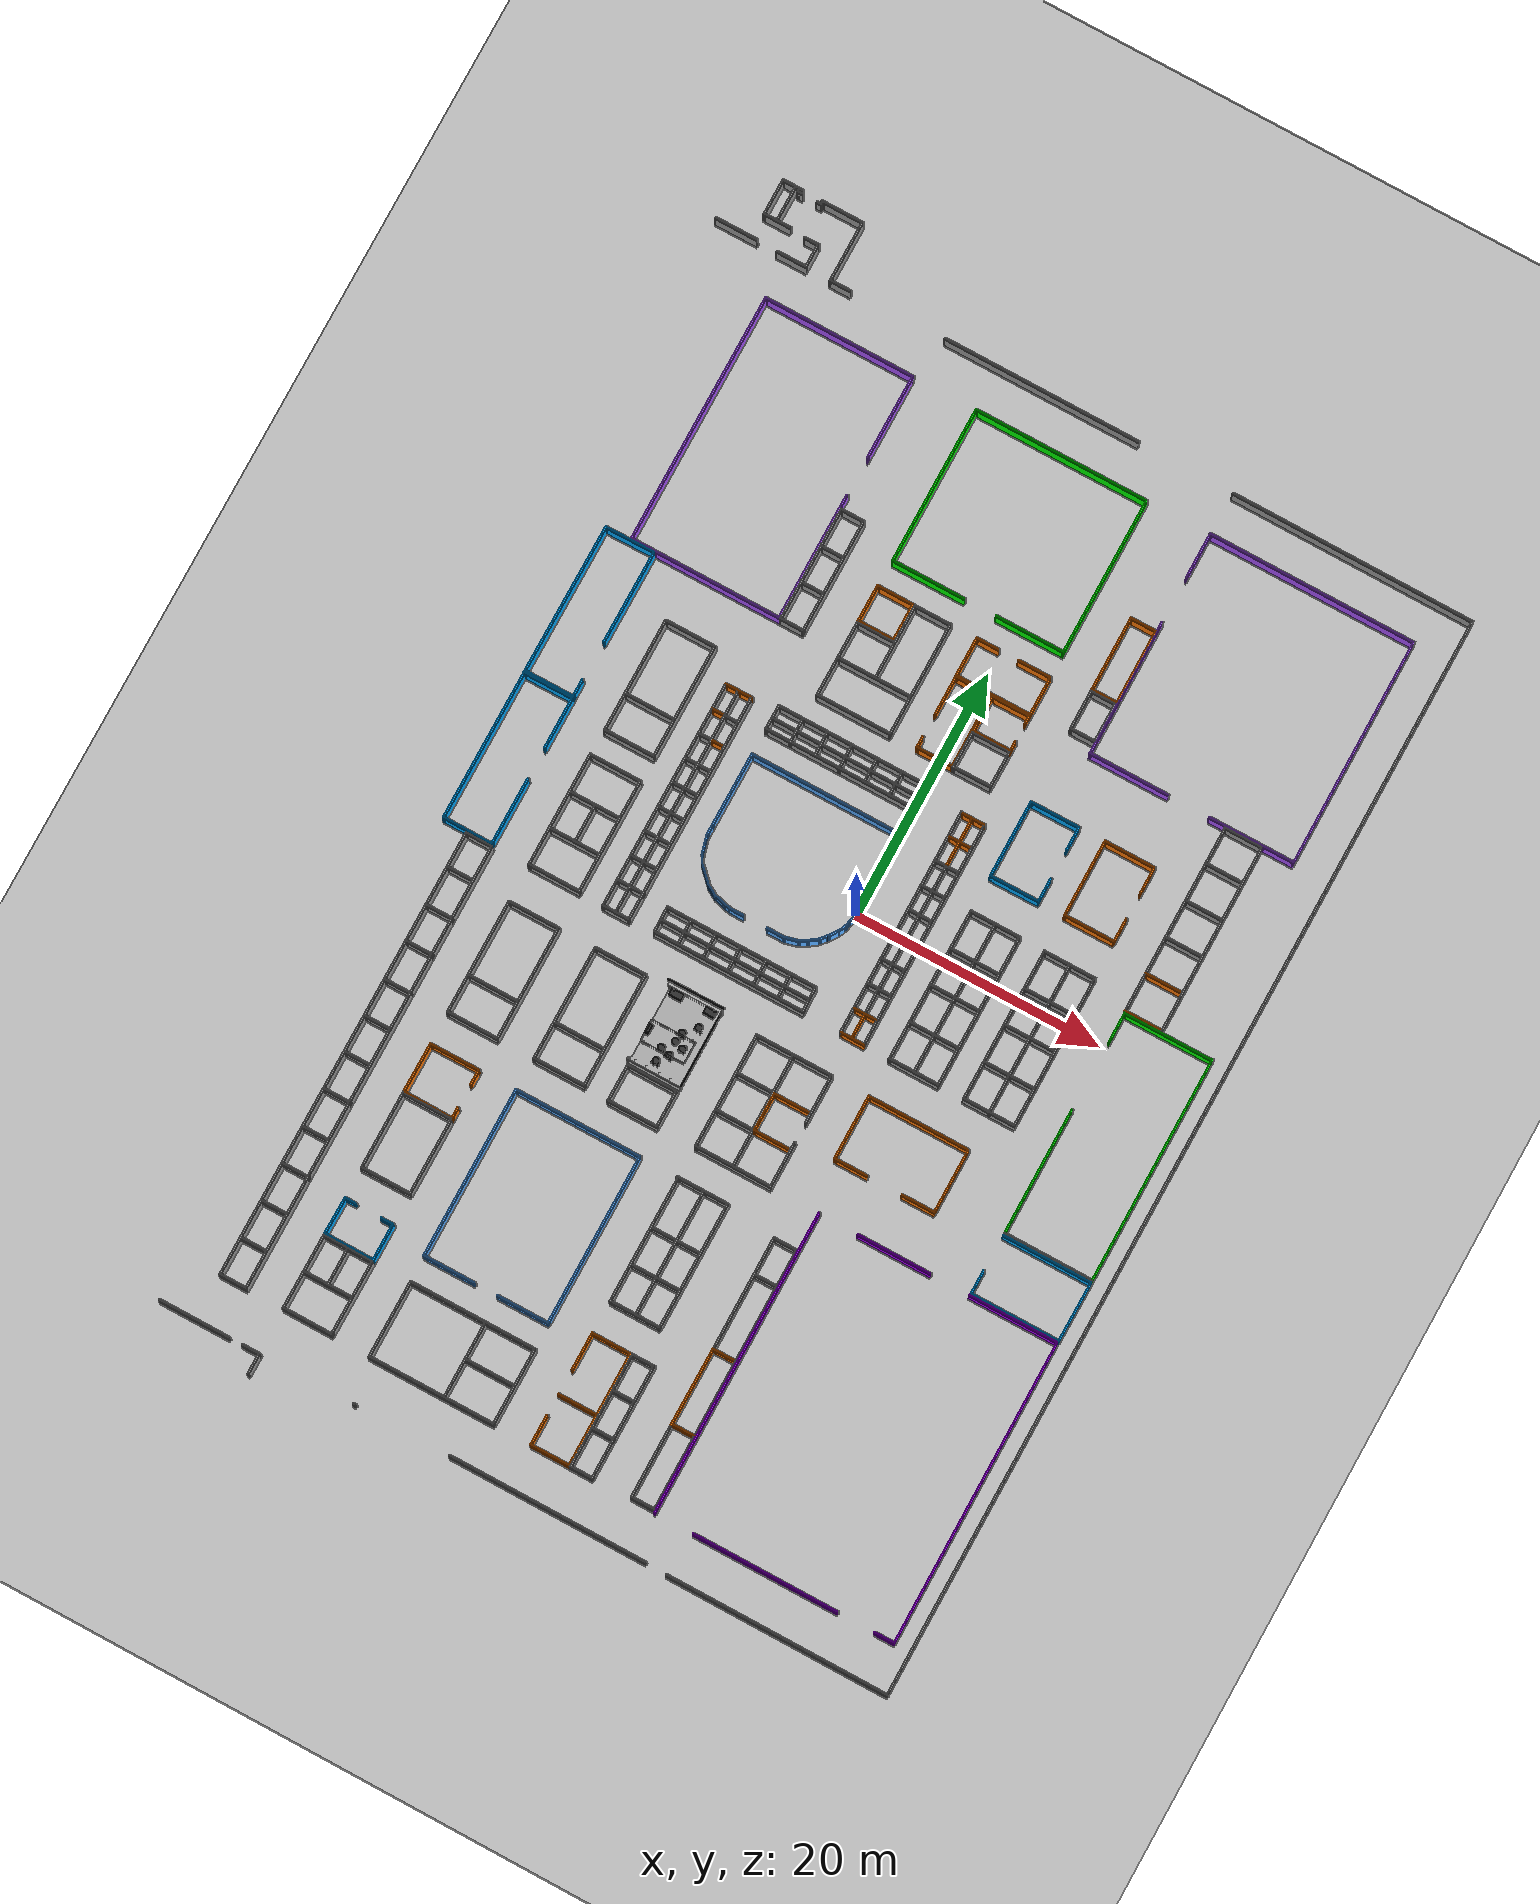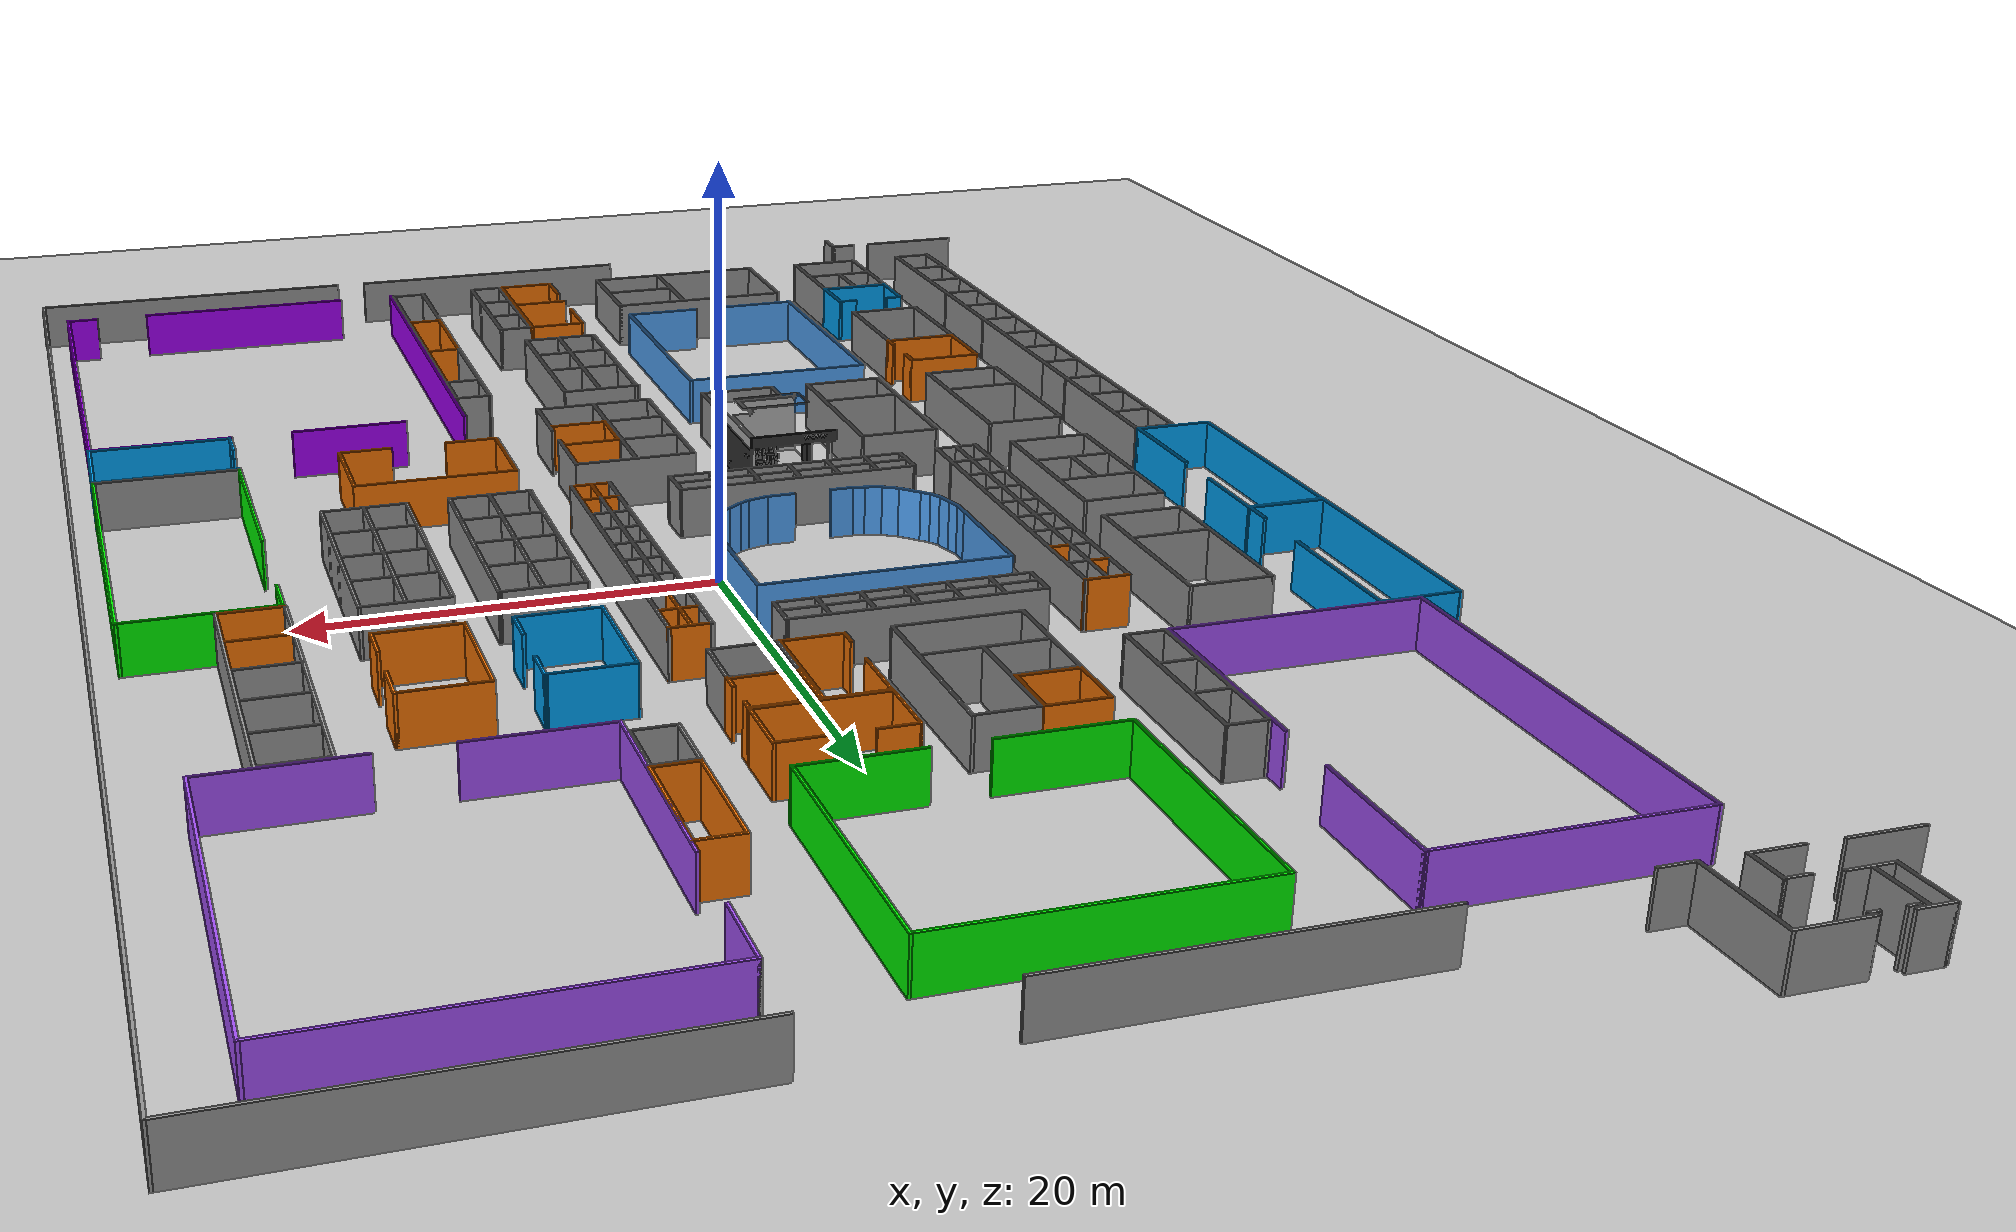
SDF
<sdf version="1.6">
 <world name="default">
  <light name="sun" type="directional">
   <cast_shadows>0</cast_shadows>
   <pose>0 0 10 0 -0 0</pose>
   <diffuse>0.8 0.8 0.8 1</diffuse>
   <specular>0.2 0.2 0.2 1</specular>
   <attenuation>
    <range>1000</range>
    <constant>0.9</constant>
    <linear>0.01</linear>
    <quadratic>0.001</quadratic>
   </attenuation>
   <direction>-0.5 0.1 -0.9</direction>
  </light>
  <model name="ground_plane">
   <static>1</static>
   <link name="link">
    <collision name="collision">
     <geometry><plane><normal>0 0 1</normal><size>100 100</size></plane></geometry>
     <surface><friction><ode><mu>100</mu><mu2>50</mu2></ode></friction></surface>
    </collision>
    <visual name="visual">
     <cast_shadows>0</cast_shadows>
     <geometry><plane><normal>0 0 1</normal><size>100 100</size></plane></geometry>
     <material>
      <script><uri>file://media/materials/scripts/gazebo.material</uri><name>Gazebo/Grey</name></script>
     </material>
    </visual>
   </link>
  </model>
  <gravity>0 0 -9.8</gravity>
  <magnetic_field>6e-06 2.3e-05 -4.2e-05</magnetic_field>
  <atmosphere type="adiabatic"/>
  <physics name="default_physics" default="0" type="ode">
   <max_step_size>0.001</max_step_size>
   <real_time_factor>1.0</real_time_factor>
   <real_time_update_rate>1000</real_time_update_rate>
  </physics>
  <scene><shadows>0</shadows></scene>
  <spherical_coordinates>
   <surface_model>EARTH_WGS84</surface_model>
   <latitude_deg>0</latitude_deg>
   <longitude_deg>0</longitude_deg>
   <elevation>0</elevation>
   <heading_deg>0</heading_deg>
  </spherical_coordinates>
  <include><uri>model://cr2_gazebo/models/lond_fintech2018/base</uri><name>fintech</name></include>
  <include>
   <uri>model://cr2_gazebo/models/lond_fintech2018/base_neighbour_box</uri>
   <name>neighbour_walls</name>
  </include>
  <include>
   <uri>model://cr2_gazebo/models/lond_fintech2018/construction</uri>
   <name>construction</name>
   <pose>-6.97021 -13.9566 1.45090 0 0 -3.141592</pose>
  </include>
  <include>
   <uri>model://cr2_gazebo/models/lond_fintech2018/chair</uri>
   <name>chair</name>
   <pose>-6.20099 -14.6145 0.845384 0 -1.1e-05 -0.109586</pose>
  </include>
  <include>
   <uri>model://cr2_gazebo/models/lond_fintech2018/chair</uri>
   <name>chair_1</name>
   <pose>-6.83457 -15.4592 0.845381 5e-06 -1.2e-05 -0.110544</pose>
  </include>
  <include>
   <uri>model://cr2_gazebo/models/lond_fintech2018/chair</uri>
   <name>chair_2</name>
   <pose>-7.45906 -16.268 0.845381 2e-06 -1e-06 -0.110191</pose>
  </include>
  <include>
   <uri>model://cr2_gazebo/models/lond_fintech2018/chair</uri>
   <name>chair_3</name>
   <pose>-5.90723 -12.7074 0.845381 -2e-06 -3e-06 -0.109988</pose>
  </include>
  <include>
   <uri>model://cr2_gazebo/models/lond_fintech2018/chair</uri>
   <name>chair_4</name>
   <pose>-6.76208 -13.6221 0.84538 2e-06 -2e-06 -0.109909</pose>
  </include>
  <include>
   <uri>model://cr2_gazebo/models/lond_fintech2018/light_construction</uri>
   <name>light_construction</name>
   <pose>-7.166 -14.9 3.62658 0 -0 0.008388</pose>
  </include>
  <include>
   <uri>model://cr2_gazebo/models/lond_fintech2018/logo</uri>
   <name>logo</name>
   <pose>-8.2508 -10.7838 2.9 0 0 -3.12334</pose>
  </include>
  <include>
   <uri>model://cr2_gazebo/models/lond_fintech2018/louver</uri>
   <name>louver</name>
   <pose>-5.00702 -14.1027 1.22778 0 -0 0.007084</pose>
  </include>
  <include>
   <uri>model://cr2_gazebo/models/lond_fintech2018/table1</uri>
   <name>table1</name>
   <pose>-5.69254 -11.2204 0.556427 0 -0 0.008843</pose>
  </include>
  <include>
   <uri>model://cr2_gazebo/models/lond_fintech2018/table1</uri>
   <name>table1_1</name>
   <pose>-8.48022 -11.249 0.556428 0 -0 0.010465</pose>
  </include>
  <include>
   <uri>model://cr2_gazebo/models/lond_fintech2018/table2</uri>
   <name>table2</name>
   <pose>-9.01844 -14.4284 0.806477 3.14159 2e-06 0.003107</pose>
  </include>
  <include>
   <uri>model://cr2_gazebo/models/lond_fintech2018/hight_table</uri>
   <name>hight_table</name>
   <pose>-7.55928 -15.2541 0.886699 7e-06 -7e-06 1.71701</pose>
  </include>
  <include>
   <uri>model://cr2_gazebo/models/lond_fintech2018/hight_table</uri>
   <name>hight_table_1</name>
   <pose>-6.85374 -14.372 0.886696 8e-06 -6e-06 1.7163</pose>
  </include>
  <include>
   <uri>model://cr2_gazebo/models/lond_fintech2018/signboard</uri>
   <name>signboard</name>
   <pose>-7.10674 -10.837 2.84256 -0.031047 0.000713 -3.13229</pose>
  </include>
  <include>
   <uri>model://cr2_gazebo/models/lond_fintech2018/light</uri>
   <name>light_1_1</name>
   <pose>-8.76 -15.75 3.46 -1.55 -0 0.008388</pose>
  </include>
  <include>
   <uri>model://cr2_gazebo/models/lond_fintech2018/light</uri>
   <name>light_1_2</name>
   <pose>-5.77 -14.00 3.41 -1.57 -0 0.008388</pose>
  </include>
  <include>
   <uri>model://cr2_gazebo/models/lond_fintech2018/light</uri>
   <name>light_2_1</name>
   <pose>-5.34 -11.12 2.72 -0.35 0.01 -3.13</pose>
  </include>
  <include>
   <uri>model://cr2_gazebo/models/lond_fintech2018/light</uri>
   <name>light_2_2</name>
   <pose>-6.44 -11.12 2.72 -0.35 0.01 -3.13</pose>
  </include>
  <include>
   <uri>model://cr2_gazebo/models/lond_fintech2018/light</uri>
   <name>light_2_3</name>
   <pose>-7.55 -11.12 2.72 -0.35 0.01 -3.13</pose>
  </include>
  <include>
   <uri>model://cr2_gazebo/models/lond_fintech2018/light</uri>
   <name>light_2_4</name>
   <pose>-8.6 -11.19 2.72 -0.35 0.01 -3.13</pose>
  </include>
 </world>
</sdf>

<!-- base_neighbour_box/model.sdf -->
<sdf version='1.6'>
  <model name='neighbour'>
    <pose frame=''>-6.98944 -19.0575 0 0 -0 0</pose>
    <link name='Wall_0'>
      <collision name='Wall_0_Collision'>
        <geometry>
          <box>
            <size>3.07416 0.15 2.5</size>
          </box>
        </geometry>
        <pose frame=''>0 0 1.25 0 -0 0</pose>
      </collision>
      <visual name='Wall_0_Visual'>
        <pose frame=''>0 0 1.25 0 -0 0</pose>
        <geometry>
          <box>
            <size>3.07416 0.15 2.5</size>
          </box>
        </geometry>
        <material>
          <script>
            <uri>file://media/materials/scripts/gazebo.material</uri>
            <name>Gazebo/Grey</name>
          </script>
          <ambient>1 1 1 1</ambient>
        </material>
        <meta>
          <layer>0</layer>
        </meta>
      </visual>
      <pose frame=''>-1.97832 -0.002472 0 0 0 -1.57249</pose>
    </link>
    <link name='Wall_2'>
      <collision name='Wall_2_Collision'>
        <geometry>
          <box>
            <size>4.09675 0.15 2.5</size>
          </box>
        </geometry>
        <pose frame=''>0 0 1.25 0 -0 0</pose>
      </collision>
      <visual name='Wall_2_Visual'>
        <pose frame=''>0 0 1.25 0 -0 0</pose>
        <geometry>
          <box>
            <size>4.09675 0.15 2.5</size>
          </box>
        </geometry>
        <material>
          <script>
            <uri>file://media/materials/scripts/gazebo.material</uri>
            <name>Gazebo/Grey</name>
          </script>
          <ambient>1 1 1 1</ambient>
        </material>
        <meta>
          <layer>0</layer>
        </meta>
      </visual>
      <pose frame=''>0.002471 1.45713 0 0 0 -0.001253</pose>
    </link>
    <link name='Wall_4'>
      <collision name='Wall_4_Collision'>
        <geometry>
          <box>
            <size>3.06922 0.15 2.5</size>
          </box>
        </geometry>
        <pose frame=''>0 0 1.25 0 -0 0</pose>
      </collision>
      <visual name='Wall_4_Visual'>
        <pose frame=''>0 0 1.25 0 -0 0</pose>
        <geometry>
          <box>
            <size>3.06922 0.15 2.5</size>
          </box>
        </geometry>
        <material>
          <script>
            <uri>file://media/materials/scripts/gazebo.material</uri>
            <name>Gazebo/Grey</name>
          </script>
          <ambient>1 1 1 1</ambient>
        </material>
        <meta>
          <layer>0</layer>
        </meta>
      </visual>
      <pose frame=''>1.97832 0.004944 0 0 0 -1.57249</pose>
    </link>
    <link name='Wall_5'>
      <collision name='Wall_5_Collision'>
        <geometry>
          <box>
            <size>4.10169 0.15 2.5</size>
          </box>
        </geometry>
        <pose frame=''>0 0 1.25 0 -0 0</pose>
      </collision>
      <visual name='Wall_5_Visual'>
        <pose frame=''>0 0 1.25 0 -0 0</pose>
        <geometry>
          <box>
            <size>4.10169 0.15 2.5</size>
          </box>
        </geometry>
        <material>
          <script>
            <uri>file://media/materials/scripts/gazebo.material</uri>
            <name>Gazebo/Grey</name>
          </script>
          <ambient>1 1 1 1</ambient>
        </material>
        <meta>
          <layer>0</layer>
        </meta>
      </visual>
      <pose frame=''>0 -1.46208 0 0 0 -3.14034</pose>
    </link>
    <static>1</static>
  </model>
</sdf>

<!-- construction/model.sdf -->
<sdf version='1.5'>
    <model name="construction">
        <pose>0 0 0 0 0 0</pose>
        <static>true</static>
        <link name='model_body'>
            <visual name="visual">
                <geometry>
                    <mesh>
                        <uri>model://cr2_gazebo/meshes/lond_fintech2018/construction_visual.dae</uri>
                        <scale>1 1 1</scale>
                    </mesh>
                </geometry>
            </visual>

            <collision name="collision">
                <geometry>
                    <mesh>
                        <uri>model://cr2_gazebo/meshes/lond_fintech2018/construction_collision.stl</uri>
                        <scale>1 1 1</scale>

                    </mesh>
                </geometry>
                <pose> 0 0 -0.01     0 0 0 </pose>
            </collision>

            <inertial>
                <pose> 0 0 0 0 0 0</pose>
                <inertia>
                    <ixx>851.2016666666665</ixx>
                    <ixy>0</ixy>
                    <ixz>0</ixz>
                    <iyy>480.26833333333326</iyy>
                    <iyz>0</iyz>
                    <izz>990.1366666666664</izz>
                </inertia>
                <mass>200.0</mass>
            </inertial>
        </link>
    </model>
</sdf>

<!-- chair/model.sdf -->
<sdf version='1.5'>
    <model name="chair">
        <pose>0 0 0 0 0 0</pose>
        <static>false</static>
        <link name='model_body'>
            <visual name="visual">
                <geometry>
                    <mesh>
                        <uri>model://cr2_gazebo/meshes/lond_fintech2018/chair_visual.dae</uri>
                        <scale>1 1 1</scale>
                    </mesh>
                </geometry>
            </visual>

            <collision name="collision">
                <geometry>
                    <mesh>
                        <uri>model://cr2_gazebo/meshes/lond_fintech2018/chair_collision.stl</uri>
                        <scale>1 1 1</scale>
                    </mesh>
                </geometry>
            </collision>

            <inertial>
                <pose> 0 0 0 0 0 0</pose>
                <inertia>
                    <ixx>0.23187500000000005</ixx>
                    <ixy>0</ixy>
                    <ixz>0</ixz>
                    <iyy>0.23187500000000005</iyy>
                    <iyz>0</iyz>
                    <izz>0.21175000000000005</izz>
                </inertia>
                <mass>7.0</mass>
            </inertial>
        </link>
    </model>
</sdf>

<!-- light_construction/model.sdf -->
<sdf version='1.5'>
    <model name="light_construction">
        <pose>0 0 0 0 0 0</pose>
        <static>true</static>
        <link name='model_body'>
            <visual name="visual">
                <geometry>
                    <mesh>
                        <uri>model://cr2_gazebo/meshes/lond_fintech2018/light_construction_visual.dae</uri>
                        <scale>1 1 1</scale>
                    </mesh>
                </geometry>
            </visual>

            <collision name="collision">
                <geometry>
                    <mesh>
                        <uri>model://cr2_gazebo/meshes/lond_fintech2018/light_construction_collision.stl</uri>
                        <scale>1 1 1</scale>
                    </mesh>
                </geometry>
            </collision>

            <inertial>
                <pose> 0 0 0 0 0 0</pose>
                <inertia>
                    <ixx>4.650833333333333</ixx>
                    <ixy>0</ixy>
                    <ixz>0</ixz>
                    <iyy>20.41933333333333</iyy>
                    <iyz>0</iyz>
                    <izz>25.064833333333333</izz>
                </inertia>
                <mass>20.0</mass>
            </inertial>
        </link>
    </model>
</sdf>

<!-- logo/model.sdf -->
<sdf version='1.5'>
    <model name="logo">
        <pose>0 0 0 0 0 0</pose>
        <static>true</static>
        <link name='model_body'>
            <visual name="visual">
                <geometry>
                    <mesh>
                        <uri>model://cr2_gazebo/meshes/lond_fintech2018/logo_visual.dae</uri>
                        <scale>1 1 1</scale>
                    </mesh>
                </geometry>
            </visual>

            <collision name="collision">
                <geometry>
                    <mesh>
                        <uri>model://cr2_gazebo/meshes/lond_fintech2018/logo_collision.stl</uri>
                        <scale>1 1 1</scale>
                    </mesh>
                </geometry>
            </collision>

            <inertial>
                <pose> 0 0 0 0 0 0</pose>
                <inertia>
                    <ixx>0.01558958333333333</ixx>
                    <ixy>0</ixy>
                    <ixz>0</ixz>
                    <iyy>0.5289229166666666</iyy>
                    <iyz>0</iyz>
                    <izz>0.5395833333333332</izz>
                </inertia>
                <mass>7.0</mass>
            </inertial>
        </link>
    </model>
</sdf>

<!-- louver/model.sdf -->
<sdf version='1.5'>
    <model name="louver">
        <pose>0 0 0 0 0 0</pose>
        <static>true</static>
        <link name='model_body'>
            <visual name="visual">
                <geometry>
                    <mesh>
                        <uri>model://cr2_gazebo/meshes/lond_fintech2018/louver_visual.dae</uri>
                        <scale>1 1 1</scale>
                    </mesh>
                </geometry>
            </visual>

            <collision name="collision">
                <geometry>
                    <mesh>
                        <uri>model://cr2_gazebo/meshes/lond_fintech2018/louver_collision.stl</uri>
                        <scale>1 1 1</scale>
                    </mesh>
                </geometry>
            </collision>

            <inertial>
                <pose> 0 0 0 0 0 0</pose>
                <inertia>
                    <ixx>22.408403333333332</ixx>
                    <ixy>0</ixy>
                    <ixz>0</ixz>
                    <iyy>21.894946666666666</iyy>
                    <iyz>0</iyz>
                    <izz>0.6126833333333332</izz>
                </inertia>
                <mass>40.0</mass>
            </inertial>
        </link>
    </model>
</sdf>

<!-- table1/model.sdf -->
<sdf version='1.5'>
    <model name="table1">
        <pose>0 0 0 0 0 0</pose>
        <static>false</static>
        <link name='model_body'>
            <visual name="visual">
                <geometry>
                    <mesh>
                        <uri>model://cr2_gazebo/meshes/lond_fintech2018/table1_visual.dae</uri>
                        <scale>1 1 1</scale>
                    </mesh>
                </geometry>
            </visual>

            <collision name="collision">
                <geometry>
                    <mesh>
                        <uri>model://cr2_gazebo/meshes/lond_fintech2018/table1_collision.stl</uri>
                        <scale>1 1 1</scale>
                    </mesh>
                </geometry>
            </collision>

            <inertial>
                <pose> 0 0 0 0 0 0</pose>
                <inertia>
                    <ixx>1.6666666666666665</ixx>
                    <ixy>0</ixy>
                    <ixz>0</ixz>
                    <iyy>2.7333333333333334</iyy>
                    <iyz>0</iyz>
                    <izz>2.266666666666666</izz>
                </inertia>
                <mass>20.0</mass>
            </inertial>
        </link>
    </model>
</sdf>

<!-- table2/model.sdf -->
<sdf version='1.5'>
    <model name="table2">
        <pose>0 0 0 0 0 0</pose>
        <static>false</static>
        <link name='model_body'>
            <visual name="visual">
                <geometry>
                    <mesh>
                        <uri>model://cr2_gazebo/meshes/lond_fintech2018/table2_visual.dae</uri>
                        <scale>1 1 1</scale>
                    </mesh>
                </geometry>
            </visual>

            <collision name="collision">
                <geometry>
                    <mesh>
                        <uri>model://cr2_gazebo/meshes/lond_fintech2018/table2_collision.stl</uri>
                        <scale>1 1 1</scale>
                    </mesh>
                </geometry>
            </collision>

            <inertial>
                <pose> 0 0 0 0 0 0</pose>
                <inertia>
                    <ixx>3.6333333333333333</ixx>
                    <ixy>0</ixy>
                    <ixz>0</ixz>
                    <iyy>2.966666666666667</iyy>
                    <iyz>0</iyz>
                    <izz>0.9666666666666666</izz>
                </inertia>
                <mass>20.0</mass>
            </inertial>
        </link>
    </model>
</sdf>

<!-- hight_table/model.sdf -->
<sdf version='1.5'>
    <model name="hight_table">
        <pose>0 0 0 0 0 0</pose>
        <static>false</static>
        <link name='model_body'>
            <visual name="visual">
                <geometry>
                    <mesh>
                        <uri>model://cr2_gazebo/meshes/lond_fintech2018/hight_table_visual.dae</uri>
                        <scale>1 1 1</scale>
                    </mesh>
                </geometry>
            </visual>

            <collision name="collision">
                <geometry>
                    <mesh>
                        <uri>model://cr2_gazebo/meshes/lond_fintech2018/hight_table_collision.stl</uri>
                        <scale>1 1 1</scale>
                    </mesh>
                </geometry>
            </collision>

            <inertial>
                <pose> 0 0 0 0 0 0</pose>
                <inertia>
                    <ixx>1.268175</ixx>
                    <ixy>0</ixy>
                    <ixz>0</ixz>
                    <iyy>1.37296875</iyy>
                    <iyz>0</iyz>
                    <izz>0.40854374999999993</izz>
                </inertia>
                <mass>15.0</mass>
            </inertial>
        </link>
    </model>
</sdf>

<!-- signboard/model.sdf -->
<sdf version='1.5'>
    <model name="signboard">
        <pose>0 0 0 0 0 0</pose>
        <static>true</static>
        <link name='model_body'>
            <visual name="visual">
                <geometry>
                    <mesh>
                        <uri>model://cr2_gazebo/meshes/lond_fintech2018/signboard_visual.dae</uri>
                        <scale>1 1 1</scale>
                    </mesh>
                </geometry>
            </visual>

            <collision name="collision">
                <geometry>
                    <mesh>
                        <uri>model://cr2_gazebo/meshes/lond_fintech2018/signboard_collision.stl</uri>
                        <scale>1 1 1</scale>
                    </mesh>
                </geometry>
            </collision>

            <inertial>
                <pose> 0 0 0 0 0 0</pose>
                <inertia>
                    <ixx>0.46540125</ixx>
                    <ixy>0</ixy>
                    <ixz>0</ixz>
                    <iyy>26.465401249999996</iyy>
                    <iyz>0</iyz>
                    <izz>26.899999999999995</izz>
                </inertia>
                <mass>15.0</mass>
            </inertial>
        </link>
    </model>
</sdf>

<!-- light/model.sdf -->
<sdf version='1.5'>
    <model name="hight_table">
        <pose>0 0 0 0 0 0</pose>
        <static>true</static>
        <link name='model_body'>
            <visual name="visual">
                <geometry>
                    <mesh>
                        <uri>model://cr2_gazebo/meshes/lond_fintech2018/light_visual.dae</uri>
                        <scale>1 1 1</scale>
                    </mesh>
                </geometry>
            </visual>

            <collision name="collision">
                <geometry>
                    <mesh>
                        <uri>model://cr2_gazebo/meshes/lond_fintech2018/light_collision.stl</uri>
                        <scale>1 1 1</scale>
                    </mesh>
                </geometry>
            </collision>

            <inertial>
                <pose> 0 0 0 0 0 0</pose>
                <inertia>
                    <ixx>1.268175</ixx>
                    <ixy>0</ixy>
                    <ixz>0</ixz>
                    <iyy>1.37296875</iyy>
                    <iyz>0</iyz>
                    <izz>0.40854374999999993</izz>
                </inertia>
                <mass>2.0</mass>
            </inertial>
        </link>
    </model>
</sdf>
